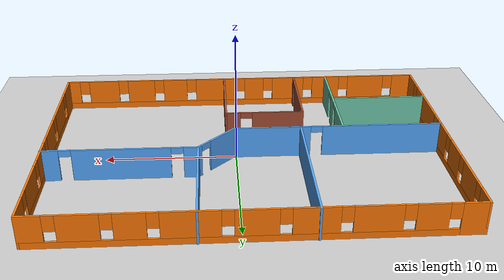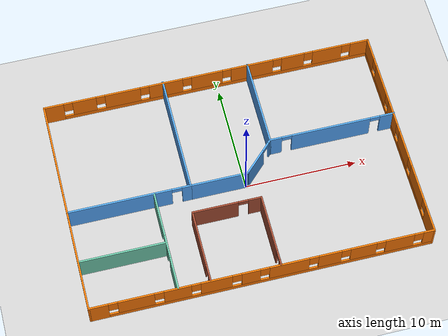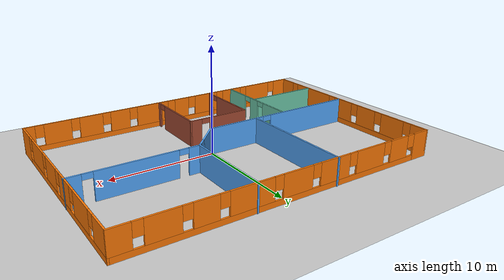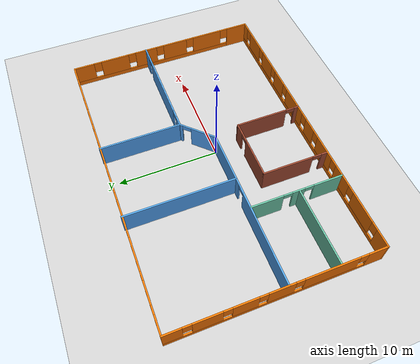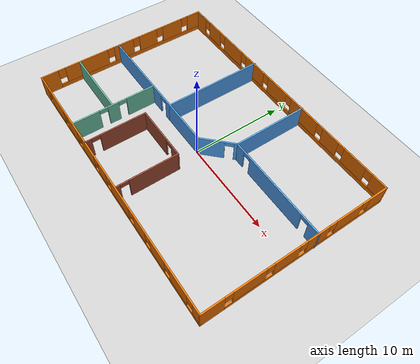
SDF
<sdf version="1.6">
 <world name="default">
  <model name="ground_plane">
   <static>1</static>
   <link name="link">
    <collision name="collision">
     <geometry><plane><normal>0 0 1</normal><size>100 100</size></plane></geometry>
     <surface>
      <contact><collide_bitmask>65535</collide_bitmask></contact>
      <friction><ode><mu>100</mu><mu2>50</mu2></ode></friction>
     </surface>
    </collision>
    <visual name="visual">
     <cast_shadows>0</cast_shadows>
     <geometry><plane><normal>0 0 1</normal><size>100 100</size></plane></geometry>
     <material>
      <script><uri>file://media/materials/scripts/gazebo.material</uri><name>Gazebo/Grey</name></script>
     </material>
    </visual>
   </link>
  </model>
  <model name="building1">
   <pose>-0.784049 0.80046 0 0 -0 0</pose>
   <link name="Wall_0">
    <pose>-0.018158 -10.0416 0 0 -0 0</pose>
    <visual name="Wall_0_Visual_0">
     <pose>-14.2164 0 1.25 0 -0 0</pose>
     <geometry><box><size>1.7173 0.15 2.5</size></box></geometry>
     <material>
      <script><uri>file://media/materials/scripts/gazebo.material</uri><name>Gazebo/Grey</name></script>
      <ambient>0.996078 0.47451 0.0196078 1</ambient>
     </material>
     <meta><layer>0</layer></meta>
    </visual>
    <collision name="Wall_0_Collision_0">
     <geometry><box><size>1.7173 0.15 2.5</size></box></geometry>
     <pose>-14.2164 0 1.25 0 -0 0</pose>
    </collision>
    <visual name="Wall_0_Visual_1">
     <pose>0.858647 0 0.25 0 -0 0</pose>
     <geometry><box><size>28.4327 0.15 0.5</size></box></geometry>
     <material>
      <script><uri>file://media/materials/scripts/gazebo.material</uri><name>Gazebo/Grey</name></script>
      <ambient>0.996078 0.47451 0.0196078 1</ambient>
     </material>
     <meta><layer>0</layer></meta>
    </visual>
    <collision name="Wall_0_Collision_1">
     <geometry><box><size>28.4327 0.15 0.5</size></box></geometry>
     <pose>0.858647 0 0.25 0 -0 0</pose>
    </collision>
    <visual name="Wall_0_Visual_2">
     <pose>-10.9877 0 1.5 0 -0 0</pose>
     <geometry><box><size>3.14002 0.15 2</size></box></geometry>
     <material>
      <script><uri>file://media/materials/scripts/gazebo.material</uri><name>Gazebo/Grey</name></script>
      <ambient>0.996078 0.47451 0.0196078 1</ambient>
     </material>
     <meta><layer>0</layer></meta>
    </visual>
    <collision name="Wall_0_Collision_2">
     <geometry><box><size>3.14002 0.15 2</size></box></geometry>
     <pose>-10.9877 0 1.5 0 -0 0</pose>
    </collision>
    <visual name="Wall_0_Visual_3">
     <pose>-7.43464 0 1.5 0 -0 0</pose>
     <geometry><box><size>2.36609 0.15 2</size></box></geometry>
     <material>
      <script><uri>file://media/materials/scripts/gazebo.material</uri><name>Gazebo/Grey</name></script>
      <ambient>0.996078 0.47451 0.0196078 1</ambient>
     </material>
     <meta><layer>0</layer></meta>
    </visual>
    <collision name="Wall_0_Collision_3">
     <geometry><box><size>2.36609 0.15 2</size></box></geometry>
     <pose>-7.43464 0 1.5 0 -0 0</pose>
    </collision>
    <visual name="Wall_0_Visual_4">
     <pose>-4.08798 0 1.5 0 -0 0</pose>
     <geometry><box><size>2.72724 0.15 2</size></box></geometry>
     <material>
      <script><uri>file://media/materials/scripts/gazebo.material</uri><name>Gazebo/Grey</name></script>
      <ambient>0.996078 0.47451 0.0196078 1</ambient>
     </material>
     <meta><layer>0</layer></meta>
    </visual>
    <collision name="Wall_0_Collision_4">
     <geometry><box><size>2.72724 0.15 2</size></box></geometry>
     <pose>-4.08798 0 1.5 0 -0 0</pose>
    </collision>
    <visual name="Wall_0_Visual_5">
     <pose>-1.11069 0 1.5 0 -0 0</pose>
     <geometry><box><size>1.62733 0.15 2</size></box></geometry>
     <material>
      <script><uri>file://media/materials/scripts/gazebo.material</uri><name>Gazebo/Grey</name></script>
      <ambient>0.996078 0.47451 0.0196078 1</ambient>
     </material>
     <meta><layer>0</layer></meta>
    </visual>
    <collision name="Wall_0_Collision_5">
     <geometry><box><size>1.62733 0.15 2</size></box></geometry>
     <pose>-1.11069 0 1.5 0 -0 0</pose>
    </collision>
    <visual name="Wall_0_Visual_6">
     <pose>2.2442 0 1.5 0 -0 0</pose>
     <geometry><box><size>3.48244 0.15 2</size></box></geometry>
     <material>
      <script><uri>file://media/materials/scripts/gazebo.material</uri><name>Gazebo/Grey</name></script>
      <ambient>0.996078 0.47451 0.0196078 1</ambient>
     </material>
     <meta><layer>0</layer></meta>
    </visual>
    <collision name="Wall_0_Collision_6">
     <geometry><box><size>3.48244 0.15 2</size></box></geometry>
     <pose>2.2442 0 1.5 0 -0 0</pose>
    </collision>
    <visual name="Wall_0_Visual_7">
     <pose>5.79258 0 1.5 0 -0 0</pose>
     <geometry><box><size>2.0143 0.15 2</size></box></geometry>
     <material>
      <script><uri>file://media/materials/scripts/gazebo.material</uri><name>Gazebo/Grey</name></script>
      <ambient>0.996078 0.47451 0.0196078 1</ambient>
     </material>
     <meta><layer>0</layer></meta>
    </visual>
    <collision name="Wall_0_Collision_7">
     <geometry><box><size>2.0143 0.15 2</size></box></geometry>
     <pose>5.79258 0 1.5 0 -0 0</pose>
    </collision>
    <visual name="Wall_0_Visual_8">
     <pose>8.74759 0 1.5 0 -0 0</pose>
     <geometry><box><size>2.29573 0.15 2</size></box></geometry>
     <material>
      <script><uri>file://media/materials/scripts/gazebo.material</uri><name>Gazebo/Grey</name></script>
      <ambient>0.996078 0.47451 0.0196078 1</ambient>
     </material>
     <meta><layer>0</layer></meta>
    </visual>
    <collision name="Wall_0_Collision_8">
     <geometry><box><size>2.29573 0.15 2</size></box></geometry>
     <pose>8.74759 0 1.5 0 -0 0</pose>
    </collision>
    <visual name="Wall_0_Visual_9">
     <pose>11.9664 0 1.5 0 -0 0</pose>
     <geometry><box><size>2.54198 0.15 2</size></box></geometry>
     <material>
      <script><uri>file://media/materials/scripts/gazebo.material</uri><name>Gazebo/Grey</name></script>
      <ambient>0.996078 0.47451 0.0196078 1</ambient>
     </material>
     <meta><layer>0</layer></meta>
    </visual>
    <collision name="Wall_0_Collision_9">
     <geometry><box><size>2.54198 0.15 2</size></box></geometry>
     <pose>11.9664 0 1.5 0 -0 0</pose>
    </collision>
    <visual name="Wall_0_Visual_10">
     <pose>14.5562 0 1.5 0 -0 0</pose>
     <geometry><box><size>1.03756 0.15 2</size></box></geometry>
     <material>
      <script><uri>file://media/materials/scripts/gazebo.material</uri><name>Gazebo/Grey</name></script>
      <ambient>0.996078 0.47451 0.0196078 1</ambient>
     </material>
     <meta><layer>0</layer></meta>
    </visual>
    <collision name="Wall_0_Collision_10">
     <geometry><box><size>1.03756 0.15 2</size></box></geometry>
     <pose>14.5562 0 1.5 0 -0 0</pose>
    </collision>
    <visual name="Wall_0_Visual_11">
     <pose>-12.9577 0 1.9 0 -0 0</pose>
     <geometry><box><size>0.8 0.15 1.2</size></box></geometry>
     <material>
      <script><uri>file://media/materials/scripts/gazebo.material</uri><name>Gazebo/Grey</name></script>
      <ambient>0.996078 0.47451 0.0196078 1</ambient>
     </material>
     <meta><layer>0</layer></meta>
    </visual>
    <collision name="Wall_0_Collision_11">
     <geometry><box><size>0.8 0.15 1.2</size></box></geometry>
     <pose>-12.9577 0 1.9 0 -0 0</pose>
    </collision>
    <visual name="Wall_0_Visual_12">
     <pose>-9.01768 0 1.9 0 -0 0</pose>
     <geometry><box><size>0.8 0.15 1.2</size></box></geometry>
     <material>
      <script><uri>file://media/materials/scripts/gazebo.material</uri><name>Gazebo/Grey</name></script>
      <ambient>0.996078 0.47451 0.0196078 1</ambient>
     </material>
     <meta><layer>0</layer></meta>
    </visual>
    <collision name="Wall_0_Collision_12">
     <geometry><box><size>0.8 0.15 1.2</size></box></geometry>
     <pose>-9.01768 0 1.9 0 -0 0</pose>
    </collision>
    <visual name="Wall_0_Visual_13">
     <pose>-5.8516 0 1.9 0 -0 0</pose>
     <geometry><box><size>0.8 0.15 1.2</size></box></geometry>
     <material>
      <script><uri>file://media/materials/scripts/gazebo.material</uri><name>Gazebo/Grey</name></script>
      <ambient>0.996078 0.47451 0.0196078 1</ambient>
     </material>
     <meta><layer>0</layer></meta>
    </visual>
    <collision name="Wall_0_Collision_13">
     <geometry><box><size>0.8 0.15 1.2</size></box></geometry>
     <pose>-5.8516 0 1.9 0 -0 0</pose>
    </collision>
    <visual name="Wall_0_Visual_14">
     <pose>-2.32436 0 1.9 0 -0 0</pose>
     <geometry><box><size>0.8 0.15 1.2</size></box></geometry>
     <material>
      <script><uri>file://media/materials/scripts/gazebo.material</uri><name>Gazebo/Grey</name></script>
      <ambient>0.996078 0.47451 0.0196078 1</ambient>
     </material>
     <meta><layer>0</layer></meta>
    </visual>
    <collision name="Wall_0_Collision_14">
     <geometry><box><size>0.8 0.15 1.2</size></box></geometry>
     <pose>-2.32436 0 1.9 0 -0 0</pose>
    </collision>
    <visual name="Wall_0_Visual_15">
     <pose>0.10298 0 1.9 0 -0 0</pose>
     <geometry><box><size>0.8 0.15 1.2</size></box></geometry>
     <material>
      <script><uri>file://media/materials/scripts/gazebo.material</uri><name>Gazebo/Grey</name></script>
      <ambient>0.996078 0.47451 0.0196078 1</ambient>
     </material>
     <meta><layer>0</layer></meta>
    </visual>
    <collision name="Wall_0_Collision_15">
     <geometry><box><size>0.8 0.15 1.2</size></box></geometry>
     <pose>0.10298 0 1.9 0 -0 0</pose>
    </collision>
    <visual name="Wall_0_Visual_16">
     <pose>4.38542 0 1.9 0 -0 0</pose>
     <geometry><box><size>0.8 0.15 1.2</size></box></geometry>
     <material>
      <script><uri>file://media/materials/scripts/gazebo.material</uri><name>Gazebo/Grey</name></script>
      <ambient>0.996078 0.47451 0.0196078 1</ambient>
     </material>
     <meta><layer>0</layer></meta>
    </visual>
    <collision name="Wall_0_Collision_16">
     <geometry><box><size>0.8 0.15 1.2</size></box></geometry>
     <pose>4.38542 0 1.9 0 -0 0</pose>
    </collision>
    <visual name="Wall_0_Visual_17">
     <pose>7.19973 0 1.9 0 -0 0</pose>
     <geometry><box><size>0.8 0.15 1.2</size></box></geometry>
     <material>
      <script><uri>file://media/materials/scripts/gazebo.material</uri><name>Gazebo/Grey</name></script>
      <ambient>0.996078 0.47451 0.0196078 1</ambient>
     </material>
     <meta><layer>0</layer></meta>
    </visual>
    <collision name="Wall_0_Collision_17">
     <geometry><box><size>0.8 0.15 1.2</size></box></geometry>
     <pose>7.19973 0 1.9 0 -0 0</pose>
    </collision>
    <visual name="Wall_0_Visual_18">
     <pose>10.2955 0 1.9 0 -0 0</pose>
     <geometry><box><size>0.8 0.15 1.2</size></box></geometry>
     <material>
      <script><uri>file://media/materials/scripts/gazebo.material</uri><name>Gazebo/Grey</name></script>
      <ambient>0.996078 0.47451 0.0196078 1</ambient>
     </material>
     <meta><layer>0</layer></meta>
    </visual>
    <collision name="Wall_0_Collision_18">
     <geometry><box><size>0.8 0.15 1.2</size></box></geometry>
     <pose>10.2955 0 1.9 0 -0 0</pose>
    </collision>
    <visual name="Wall_0_Visual_19">
     <pose>13.6374 0 1.9 0 -0 0</pose>
     <geometry><box><size>0.8 0.15 1.2</size></box></geometry>
     <material>
      <script><uri>file://media/materials/scripts/gazebo.material</uri><name>Gazebo/Grey</name></script>
      <ambient>0.996078 0.47451 0.0196078 1</ambient>
     </material>
     <meta><layer>0</layer></meta>
    </visual>
    <collision name="Wall_0_Collision_19">
     <geometry><box><size>0.8 0.15 1.2</size></box></geometry>
     <pose>13.6374 0 1.9 0 -0 0</pose>
    </collision>
   </link>
   <link name="Wall_11">
    <pose>-7.3948 -5.44058 0 0 0 -1.5708</pose>
    <visual name="Wall_11_Visual_0">
     <pose>-3.01002 0 1.25 0 -0 0</pose>
     <geometry><box><size>3.22995 0.15 2.5</size></box></geometry>
     <material>
      <script><uri>file://media/materials/scripts/gazebo.material</uri><name>Gazebo/Grey</name></script>
      <ambient>0.435294 0.796078 0.67451 1</ambient>
     </material>
     <meta><layer>0</layer></meta>
    </visual>
    <collision name="Wall_11_Collision_0">
     <geometry><box><size>3.22995 0.15 2.5</size></box></geometry>
     <pose>-3.01002 0 1.25 0 -0 0</pose>
    </collision>
    <visual name="Wall_11_Visual_1">
     <pose>0.127027 0 1.25 0 -0 0</pose>
     <geometry><box><size>1.24415 0.15 2.5</size></box></geometry>
     <material>
      <script><uri>file://media/materials/scripts/gazebo.material</uri><name>Gazebo/Grey</name></script>
      <ambient>0.435294 0.796078 0.67451 1</ambient>
     </material>
     <meta><layer>0</layer></meta>
    </visual>
    <collision name="Wall_11_Collision_1">
     <geometry><box><size>1.24415 0.15 2.5</size></box></geometry>
     <pose>0.127027 0 1.25 0 -0 0</pose>
    </collision>
    <visual name="Wall_11_Visual_2">
     <pose>3.13705 0 1.25 0 -0 0</pose>
     <geometry><box><size>2.9759 0.15 2.5</size></box></geometry>
     <material>
      <script><uri>file://media/materials/scripts/gazebo.material</uri><name>Gazebo/Grey</name></script>
      <ambient>0.435294 0.796078 0.67451 1</ambient>
     </material>
     <meta><layer>0</layer></meta>
    </visual>
    <collision name="Wall_11_Collision_2">
     <geometry><box><size>2.9759 0.15 2.5</size></box></geometry>
     <pose>3.13705 0 1.25 0 -0 0</pose>
    </collision>
    <visual name="Wall_11_Visual_3">
     <pose>-0.945045 0 2.25 0 -0 0</pose>
     <geometry><box><size>0.9 0.15 0.5</size></box></geometry>
     <material>
      <script><uri>file://media/materials/scripts/gazebo.material</uri><name>Gazebo/Grey</name></script>
      <ambient>0.435294 0.796078 0.67451 1</ambient>
     </material>
     <meta><layer>0</layer></meta>
    </visual>
    <collision name="Wall_11_Collision_3">
     <geometry><box><size>0.9 0.15 0.5</size></box></geometry>
     <pose>-0.945045 0 2.25 0 -0 0</pose>
    </collision>
    <visual name="Wall_11_Visual_4">
     <pose>1.1991 0 2.25 0 -0 0</pose>
     <geometry><box><size>0.9 0.15 0.5</size></box></geometry>
     <material>
      <script><uri>file://media/materials/scripts/gazebo.material</uri><name>Gazebo/Grey</name></script>
      <ambient>0.435294 0.796078 0.67451 1</ambient>
     </material>
     <meta><layer>0</layer></meta>
    </visual>
    <collision name="Wall_11_Collision_4">
     <geometry><box><size>0.9 0.15 0.5</size></box></geometry>
     <pose>1.1991 0 2.25 0 -0 0</pose>
    </collision>
   </link>
   <link name="Wall_13">
    <collision name="Wall_13_Collision">
     <geometry><box><size>5.25 0.15 2.5</size></box></geometry>
     <pose>0 0 1.25 0 -0 0</pose>
    </collision>
    <visual name="Wall_13_Visual">
     <pose>0 0 1.25 0 -0 0</pose>
     <geometry><box><size>5.25 0.15 2.5</size></box></geometry>
     <material>
      <script><uri>file://media/materials/scripts/gazebo.material</uri><name>Gazebo/Grey</name></script>
      <ambient>0.333333 0.666667 1 1</ambient>
     </material>
     <meta><layer>0</layer></meta>
    </visual>
    <pose>-1.6042 -0.808364 0 0 -0 0</pose>
   </link>
   <link name="Wall_14">
    <pose>2.30698 0.552817 0 0 -0 0.785398</pose>
    <visual name="Wall_14_Visual_0">
     <pose>-0.648809 0 1.25 0 -0 0</pose>
     <geometry><box><size>2.70238 0.15 2.5</size></box></geometry>
     <material>
      <script><uri>file://media/materials/scripts/gazebo.material</uri><name>Gazebo/Grey</name></script>
      <ambient>0.333333 0.666667 1 1</ambient>
     </material>
     <meta><layer>0</layer></meta>
    </visual>
    <collision name="Wall_14_Collision_0">
     <geometry><box><size>2.70238 0.15 2.5</size></box></geometry>
     <pose>-0.648809 0 1.25 0 -0 0</pose>
    </collision>
    <visual name="Wall_14_Visual_1">
     <pose>1.80119 0 1.25 0 -0 0</pose>
     <geometry><box><size>0.397618 0.15 2.5</size></box></geometry>
     <material>
      <script><uri>file://media/materials/scripts/gazebo.material</uri><name>Gazebo/Grey</name></script>
      <ambient>0.333333 0.666667 1 1</ambient>
     </material>
     <meta><layer>0</layer></meta>
    </visual>
    <collision name="Wall_14_Collision_1">
     <geometry><box><size>0.397618 0.15 2.5</size></box></geometry>
     <pose>1.80119 0 1.25 0 -0 0</pose>
    </collision>
    <visual name="Wall_14_Visual_2">
     <pose>1.15238 0 2.25 0 -0 0</pose>
     <geometry><box><size>0.9 0.15 0.5</size></box></geometry>
     <material>
      <script><uri>file://media/materials/scripts/gazebo.material</uri><name>Gazebo/Grey</name></script>
      <ambient>0.333333 0.666667 1 1</ambient>
     </material>
     <meta><layer>0</layer></meta>
    </visual>
    <collision name="Wall_14_Collision_2">
     <geometry><box><size>0.9 0.15 0.5</size></box></geometry>
     <pose>1.15238 0 2.25 0 -0 0</pose>
    </collision>
   </link>
   <link name="Wall_15">
    <collision name="Wall_15_Collision">
     <geometry><box><size>8.25 0.15 2.5</size></box></geometry>
     <pose>0 0 1.25 0 -0 0</pose>
    </collision>
    <visual name="Wall_15_Visual">
     <pose>0 0 1.25 0 -0 0</pose>
     <geometry><box><size>8.25 0.15 2.5</size></box></geometry>
     <material>
      <script><uri>file://media/materials/scripts/gazebo.material</uri><name>Gazebo/Grey</name></script>
      <ambient>0.333333 0.666667 1 1</ambient>
     </material>
     <meta><layer>0</layer></meta>
    </visual>
    <pose>3.66816 5.964 0 0 -0 1.5708</pose>
   </link>
   <link name="Wall_17">
    <pose>9.34316 1.914 0 0 -0 0</pose>
    <visual name="Wall_17_Visual_0">
     <pose>-5.18047 0 1.25 0 -0 0</pose>
     <geometry><box><size>1.13906 0.15 2.5</size></box></geometry>
     <material>
      <script><uri>file://media/materials/scripts/gazebo.material</uri><name>Gazebo/Grey</name></script>
      <ambient>0.333333 0.666667 1 1</ambient>
     </material>
     <meta><layer>0</layer></meta>
    </visual>
    <collision name="Wall_17_Collision_0">
     <geometry><box><size>1.13906 0.15 2.5</size></box></geometry>
     <pose>-5.18047 0 1.25 0 -0 0</pose>
    </collision>
    <visual name="Wall_17_Visual_1">
     <pose>-0.115377 0 1.25 0 -0 0</pose>
     <geometry><box><size>7.19111 0.15 2.5</size></box></geometry>
     <material>
      <script><uri>file://media/materials/scripts/gazebo.material</uri><name>Gazebo/Grey</name></script>
      <ambient>0.333333 0.666667 1 1</ambient>
     </material>
     <meta><layer>0</layer></meta>
    </visual>
    <collision name="Wall_17_Collision_1">
     <geometry><box><size>7.19111 0.15 2.5</size></box></geometry>
     <pose>-0.115377 0 1.25 0 -0 0</pose>
    </collision>
    <visual name="Wall_17_Visual_2">
     <pose>5.06509 0 1.25 0 -0 0</pose>
     <geometry><box><size>1.36982 0.15 2.5</size></box></geometry>
     <material>
      <script><uri>file://media/materials/scripts/gazebo.material</uri><name>Gazebo/Grey</name></script>
      <ambient>0.333333 0.666667 1 1</ambient>
     </material>
     <meta><layer>0</layer></meta>
    </visual>
    <collision name="Wall_17_Collision_2">
     <geometry><box><size>1.36982 0.15 2.5</size></box></geometry>
     <pose>5.06509 0 1.25 0 -0 0</pose>
    </collision>
    <visual name="Wall_17_Visual_3">
     <pose>-4.16094 0 2.25 0 -0 0</pose>
     <geometry><box><size>0.9 0.15 0.5</size></box></geometry>
     <material>
      <script><uri>file://media/materials/scripts/gazebo.material</uri><name>Gazebo/Grey</name></script>
      <ambient>0.333333 0.666667 1 1</ambient>
     </material>
     <meta><layer>0</layer></meta>
    </visual>
    <collision name="Wall_17_Collision_3">
     <geometry><box><size>0.9 0.15 0.5</size></box></geometry>
     <pose>-4.16094 0 2.25 0 -0 0</pose>
    </collision>
    <visual name="Wall_17_Visual_4">
     <pose>3.93018 0 2.25 0 -0 0</pose>
     <geometry><box><size>0.9 0.15 0.5</size></box></geometry>
     <material>
      <script><uri>file://media/materials/scripts/gazebo.material</uri><name>Gazebo/Grey</name></script>
      <ambient>0.333333 0.666667 1 1</ambient>
     </material>
     <meta><layer>0</layer></meta>
    </visual>
    <collision name="Wall_17_Collision_4">
     <geometry><box><size>0.9 0.15 0.5</size></box></geometry>
     <pose>3.93018 0 2.25 0 -0 0</pose>
    </collision>
   </link>
   <link name="Wall_19">
    <collision name="Wall_19_Collision">
     <geometry><box><size>7.5 0.15 2.5</size></box></geometry>
     <pose>0 0 1.25 0 -0 0</pose>
    </collision>
    <visual name="Wall_19_Visual">
     <pose>0 0 1.25 0 -0 0</pose>
     <geometry><box><size>7.5 0.15 2.5</size></box></geometry>
     <material>
      <script><uri>file://media/materials/scripts/gazebo.material</uri><name>Gazebo/Grey</name></script>
      <ambient>0.435294 0.796078 0.67451 1</ambient>
     </material>
     <meta><layer>0</layer></meta>
    </visual>
    <pose>-11.1958 -5.62829 0 0 -0 3.14159</pose>
   </link>
   <link name="Wall_2">
    <pose>-15.0182 -0.041636 0 0 -0 1.5708</pose>
    <visual name="Wall_2_Visual_0">
     <pose>-9.11261 0 1.25 0 -0 0</pose>
     <geometry><box><size>1.92478 0.15 2.5</size></box></geometry>
     <material>
      <script><uri>file://media/materials/scripts/gazebo.material</uri><name>Gazebo/Grey</name></script>
      <ambient>0.996078 0.47451 0.0196078 1</ambient>
     </material>
     <meta><layer>0</layer></meta>
    </visual>
    <collision name="Wall_2_Collision_0">
     <geometry><box><size>1.92478 0.15 2.5</size></box></geometry>
     <pose>-9.11261 0 1.25 0 -0 0</pose>
    </collision>
    <visual name="Wall_2_Visual_1">
     <pose>0.962392 0 0.25 0 -0 0</pose>
     <geometry><box><size>18.2252 0.15 0.5</size></box></geometry>
     <material>
      <script><uri>file://media/materials/scripts/gazebo.material</uri><name>Gazebo/Grey</name></script>
      <ambient>0.996078 0.47451 0.0196078 1</ambient>
     </material>
     <meta><layer>0</layer></meta>
    </visual>
    <collision name="Wall_2_Collision_1">
     <geometry><box><size>18.2252 0.15 0.5</size></box></geometry>
     <pose>0.962392 0 0.25 0 -0 0</pose>
    </collision>
    <visual name="Wall_2_Visual_2">
     <pose>-4.77761 0 1.5 0 -0 0</pose>
     <geometry><box><size>5.14521 0.15 2</size></box></geometry>
     <material>
      <script><uri>file://media/materials/scripts/gazebo.material</uri><name>Gazebo/Grey</name></script>
      <ambient>0.996078 0.47451 0.0196078 1</ambient>
     </material>
     <meta><layer>0</layer></meta>
    </visual>
    <collision name="Wall_2_Collision_2">
     <geometry><box><size>5.14521 0.15 2</size></box></geometry>
     <pose>-4.77761 0 1.5 0 -0 0</pose>
    </collision>
    <visual name="Wall_2_Visual_3">
     <pose>-0.186783 0 1.5 0 -0 0</pose>
     <geometry><box><size>2.43645 0.15 2</size></box></geometry>
     <material>
      <script><uri>file://media/materials/scripts/gazebo.material</uri><name>Gazebo/Grey</name></script>
      <ambient>0.996078 0.47451 0.0196078 1</ambient>
     </material>
     <meta><layer>0</layer></meta>
    </visual>
    <collision name="Wall_2_Collision_3">
     <geometry><box><size>2.43645 0.15 2</size></box></geometry>
     <pose>-0.186783 0 1.5 0 -0 0</pose>
    </collision>
    <visual name="Wall_2_Visual_4">
     <pose>2.97931 0 1.5 0 -0 0</pose>
     <geometry><box><size>2.29573 0.15 2</size></box></geometry>
     <material>
      <script><uri>file://media/materials/scripts/gazebo.material</uri><name>Gazebo/Grey</name></script>
      <ambient>0.996078 0.47451 0.0196078 1</ambient>
     </material>
     <meta><layer>0</layer></meta>
    </visual>
    <collision name="Wall_2_Collision_4">
     <geometry><box><size>2.29573 0.15 2</size></box></geometry>
     <pose>2.97931 0 1.5 0 -0 0</pose>
    </collision>
    <visual name="Wall_2_Visual_5">
     <pose>6.23334 0 1.5 0 -0 0</pose>
     <geometry><box><size>2.61234 0.15 2</size></box></geometry>
     <material>
      <script><uri>file://media/materials/scripts/gazebo.material</uri><name>Gazebo/Grey</name></script>
      <ambient>0.996078 0.47451 0.0196078 1</ambient>
     </material>
     <meta><layer>0</layer></meta>
    </visual>
    <collision name="Wall_2_Collision_5">
     <geometry><box><size>2.61234 0.15 2</size></box></geometry>
     <pose>6.23334 0 1.5 0 -0 0</pose>
    </collision>
    <visual name="Wall_2_Visual_6">
     <pose>9.20726 0 1.5 0 -0 0</pose>
     <geometry><box><size>1.73549 0.15 2</size></box></geometry>
     <material>
      <script><uri>file://media/materials/scripts/gazebo.material</uri><name>Gazebo/Grey</name></script>
      <ambient>0.996078 0.47451 0.0196078 1</ambient>
     </material>
     <meta><layer>0</layer></meta>
    </visual>
    <collision name="Wall_2_Collision_6">
     <geometry><box><size>1.73549 0.15 2</size></box></geometry>
     <pose>9.20726 0 1.5 0 -0 0</pose>
    </collision>
    <visual name="Wall_2_Visual_7">
     <pose>-7.75022 0 1.9 0 -0 0</pose>
     <geometry><box><size>0.8 0.15 1.2</size></box></geometry>
     <material>
      <script><uri>file://media/materials/scripts/gazebo.material</uri><name>Gazebo/Grey</name></script>
      <ambient>0.996078 0.47451 0.0196078 1</ambient>
     </material>
     <meta><layer>0</layer></meta>
    </visual>
    <collision name="Wall_2_Collision_7">
     <geometry><box><size>0.8 0.15 1.2</size></box></geometry>
     <pose>-7.75022 0 1.9 0 -0 0</pose>
    </collision>
    <visual name="Wall_2_Visual_8">
     <pose>-1.80501 0 1.9 0 -0 0</pose>
     <geometry><box><size>0.8 0.15 1.2</size></box></geometry>
     <material>
      <script><uri>file://media/materials/scripts/gazebo.material</uri><name>Gazebo/Grey</name></script>
      <ambient>0.996078 0.47451 0.0196078 1</ambient>
     </material>
     <meta><layer>0</layer></meta>
    </visual>
    <collision name="Wall_2_Collision_8">
     <geometry><box><size>0.8 0.15 1.2</size></box></geometry>
     <pose>-1.80501 0 1.9 0 -0 0</pose>
    </collision>
    <visual name="Wall_2_Visual_9">
     <pose>1.43144 0 1.9 0 -0 0</pose>
     <geometry><box><size>0.8 0.15 1.2</size></box></geometry>
     <material>
      <script><uri>file://media/materials/scripts/gazebo.material</uri><name>Gazebo/Grey</name></script>
      <ambient>0.996078 0.47451 0.0196078 1</ambient>
     </material>
     <meta><layer>0</layer></meta>
    </visual>
    <collision name="Wall_2_Collision_9">
     <geometry><box><size>0.8 0.15 1.2</size></box></geometry>
     <pose>1.43144 0 1.9 0 -0 0</pose>
    </collision>
    <visual name="Wall_2_Visual_10">
     <pose>4.52717 0 1.9 0 -0 0</pose>
     <geometry><box><size>0.8 0.15 1.2</size></box></geometry>
     <material>
      <script><uri>file://media/materials/scripts/gazebo.material</uri><name>Gazebo/Grey</name></script>
      <ambient>0.996078 0.47451 0.0196078 1</ambient>
     </material>
     <meta><layer>0</layer></meta>
    </visual>
    <collision name="Wall_2_Collision_10">
     <geometry><box><size>0.8 0.15 1.2</size></box></geometry>
     <pose>4.52717 0 1.9 0 -0 0</pose>
    </collision>
    <visual name="Wall_2_Visual_11">
     <pose>7.93951 0 1.9 0 -0 0</pose>
     <geometry><box><size>0.8 0.15 1.2</size></box></geometry>
     <material>
      <script><uri>file://media/materials/scripts/gazebo.material</uri><name>Gazebo/Grey</name></script>
      <ambient>0.996078 0.47451 0.0196078 1</ambient>
     </material>
     <meta><layer>0</layer></meta>
    </visual>
    <collision name="Wall_2_Collision_11">
     <geometry><box><size>0.8 0.15 1.2</size></box></geometry>
     <pose>7.93951 0 1.9 0 -0 0</pose>
    </collision>
   </link>
   <link name="Wall_23">
    <pose>-4.60803 -6.6975 0 0 -0 1.5708</pose>
    <visual name="Wall_23_Visual_0">
     <pose>-3.01635 0 1.25 0 -0 0</pose>
     <geometry><box><size>0.717301 0.15 2.5</size></box></geometry>
     <material>
      <script><uri>file://media/materials/scripts/gazebo.material</uri><name>Gazebo/Bricks</name></script>
      <ambient>0.435294 0.796078 0.67451 1</ambient>
     </material>
     <meta><layer>0</layer></meta>
    </visual>
    <collision name="Wall_23_Collision_0">
     <geometry><box><size>0.717301 0.15 2.5</size></box></geometry>
     <pose>-3.01635 0 1.25 0 -0 0</pose>
    </collision>
    <visual name="Wall_23_Visual_1">
     <pose>0.80865 0 1.25 0 -0 0</pose>
     <geometry><box><size>5.1327 0.15 2.5</size></box></geometry>
     <material>
      <script><uri>file://media/materials/scripts/gazebo.material</uri><name>Gazebo/Bricks</name></script>
      <ambient>0.435294 0.796078 0.67451 1</ambient>
     </material>
     <meta><layer>0</layer></meta>
    </visual>
    <collision name="Wall_23_Collision_1">
     <geometry><box><size>5.1327 0.15 2.5</size></box></geometry>
     <pose>0.80865 0 1.25 0 -0 0</pose>
    </collision>
    <visual name="Wall_23_Visual_2">
     <pose>-2.2077 0 2.25 0 -0 0</pose>
     <geometry><box><size>0.9 0.15 0.5</size></box></geometry>
     <material>
      <script><uri>file://media/materials/scripts/gazebo.material</uri><name>Gazebo/Bricks</name></script>
      <ambient>0.435294 0.796078 0.67451 1</ambient>
     </material>
     <meta><layer>0</layer></meta>
    </visual>
    <collision name="Wall_23_Collision_2">
     <geometry><box><size>0.9 0.15 0.5</size></box></geometry>
     <pose>-2.2077 0 2.25 0 -0 0</pose>
    </collision>
   </link>
   <link name="Wall_24">
    <pose>-1.55802 -3.3975 0 0 -0 0</pose>
    <visual name="Wall_24_Visual_0">
     <pose>-1.06722 0 1.25 0 -0 0</pose>
     <geometry><box><size>4.11557 0.15 2.5</size></box></geometry>
     <material>
      <script><uri>file://media/materials/scripts/gazebo.material</uri><name>Gazebo/Bricks</name></script>
      <ambient>0.435294 0.796078 0.67451 1</ambient>
     </material>
     <meta><layer>0</layer></meta>
    </visual>
    <collision name="Wall_24_Collision_0">
     <geometry><box><size>4.11557 0.15 2.5</size></box></geometry>
     <pose>-1.06722 0 1.25 0 -0 0</pose>
    </collision>
    <visual name="Wall_24_Visual_1">
     <pose>2.50779 0 1.25 0 -0 0</pose>
     <geometry><box><size>1.23443 0.15 2.5</size></box></geometry>
     <material>
      <script><uri>file://media/materials/scripts/gazebo.material</uri><name>Gazebo/Bricks</name></script>
      <ambient>0.435294 0.796078 0.67451 1</ambient>
     </material>
     <meta><layer>0</layer></meta>
    </visual>
    <collision name="Wall_24_Collision_1">
     <geometry><box><size>1.23443 0.15 2.5</size></box></geometry>
     <pose>2.50779 0 1.25 0 -0 0</pose>
    </collision>
    <visual name="Wall_24_Visual_2">
     <pose>1.44057 0 2.25 0 -0 0</pose>
     <geometry><box><size>0.9 0.15 0.5</size></box></geometry>
     <material>
      <script><uri>file://media/materials/scripts/gazebo.material</uri><name>Gazebo/Bricks</name></script>
      <ambient>0.435294 0.796078 0.67451 1</ambient>
     </material>
     <meta><layer>0</layer></meta>
    </visual>
    <collision name="Wall_24_Collision_2">
     <geometry><box><size>0.9 0.15 0.5</size></box></geometry>
     <pose>1.44057 0 2.25 0 -0 0</pose>
    </collision>
   </link>
   <link name="Wall_25">
    <pose>1.49197 -6.6975 0 0 0 -1.5708</pose>
    <visual name="Wall_25_Visual_0">
     <pose>-0.707511 0 1.25 0 -0 0</pose>
     <geometry><box><size>5.33498 0.15 2.5</size></box></geometry>
     <material>
      <script><uri>file://media/materials/scripts/gazebo.material</uri><name>Gazebo/Bricks</name></script>
      <ambient>0.435294 0.796078 0.67451 1</ambient>
     </material>
     <meta><layer>0</layer></meta>
    </visual>
    <collision name="Wall_25_Collision_0">
     <geometry><box><size>5.33498 0.15 2.5</size></box></geometry>
     <pose>-0.707511 0 1.25 0 -0 0</pose>
    </collision>
    <visual name="Wall_25_Visual_1">
     <pose>3.11749 0 1.25 0 -0 0</pose>
     <geometry><box><size>0.515023 0.15 2.5</size></box></geometry>
     <material>
      <script><uri>file://media/materials/scripts/gazebo.material</uri><name>Gazebo/Bricks</name></script>
      <ambient>0.435294 0.796078 0.67451 1</ambient>
     </material>
     <meta><layer>0</layer></meta>
    </visual>
    <collision name="Wall_25_Collision_1">
     <geometry><box><size>0.515023 0.15 2.5</size></box></geometry>
     <pose>3.11749 0 1.25 0 -0 0</pose>
    </collision>
    <visual name="Wall_25_Visual_2">
     <pose>2.40998 0 2.25 0 -0 0</pose>
     <geometry><box><size>0.9 0.15 0.5</size></box></geometry>
     <material>
      <script><uri>file://media/materials/scripts/gazebo.material</uri><name>Gazebo/Bricks</name></script>
      <ambient>0.435294 0.796078 0.67451 1</ambient>
     </material>
     <meta><layer>0</layer></meta>
    </visual>
    <collision name="Wall_25_Collision_2">
     <geometry><box><size>0.9 0.15 0.5</size></box></geometry>
     <pose>2.40998 0 2.25 0 -0 0</pose>
    </collision>
   </link>
   <link name="Wall_4">
    <pose>-0.018158 9.95836 0 0 -0 0</pose>
    <visual name="Wall_4_Visual_0">
     <pose>-14.1636 0 1.25 0 -0 0</pose>
     <geometry><box><size>1.82283 0.15 2.5</size></box></geometry>
     <material>
      <script><uri>file://media/materials/scripts/gazebo.material</uri><name>Gazebo/Grey</name></script>
      <ambient>0.996078 0.47451 0.0196078 1</ambient>
     </material>
     <meta><layer>0</layer></meta>
    </visual>
    <collision name="Wall_4_Collision_0">
     <geometry><box><size>1.82283 0.15 2.5</size></box></geometry>
     <pose>-14.1636 0 1.25 0 -0 0</pose>
    </collision>
    <visual name="Wall_4_Visual_1">
     <pose>0.911415 0 0.25 0 -0 0</pose>
     <geometry><box><size>28.3272 0.15 0.5</size></box></geometry>
     <material>
      <script><uri>file://media/materials/scripts/gazebo.material</uri><name>Gazebo/Grey</name></script>
      <ambient>0.996078 0.47451 0.0196078 1</ambient>
     </material>
     <meta><layer>0</layer></meta>
    </visual>
    <collision name="Wall_4_Collision_1">
     <geometry><box><size>28.3272 0.15 0.5</size></box></geometry>
     <pose>0.911415 0 0.25 0 -0 0</pose>
    </collision>
    <visual name="Wall_4_Visual_2">
     <pose>-11.3747 0 1.5 0 -0 0</pose>
     <geometry><box><size>2.15502 0.15 2</size></box></geometry>
     <material>
      <script><uri>file://media/materials/scripts/gazebo.material</uri><name>Gazebo/Grey</name></script>
      <ambient>0.996078 0.47451 0.0196078 1</ambient>
     </material>
     <meta><layer>0</layer></meta>
    </visual>
    <collision name="Wall_4_Collision_2">
     <geometry><box><size>2.15502 0.15 2</size></box></geometry>
     <pose>-11.3747 0 1.5 0 -0 0</pose>
    </collision>
    <visual name="Wall_4_Visual_3">
     <pose>-7.87437 0 1.5 0 -0 0</pose>
     <geometry><box><size>3.24556 0.15 2</size></box></geometry>
     <material>
      <script><uri>file://media/materials/scripts/gazebo.material</uri><name>Gazebo/Grey</name></script>
      <ambient>0.996078 0.47451 0.0196078 1</ambient>
     </material>
     <meta><layer>0</layer></meta>
    </visual>
    <collision name="Wall_4_Collision_3">
     <geometry><box><size>3.24556 0.15 2</size></box></geometry>
     <pose>-7.87437 0 1.5 0 -0 0</pose>
    </collision>
    <visual name="Wall_4_Visual_4">
     <pose>-3.89917 0 1.5 0 -0 0</pose>
     <geometry><box><size>3.10484 0.15 2</size></box></geometry>
     <material>
      <script><uri>file://media/materials/scripts/gazebo.material</uri><name>Gazebo/Grey</name></script>
      <ambient>0.996078 0.47451 0.0196078 1</ambient>
     </material>
     <meta><layer>0</layer></meta>
    </visual>
    <collision name="Wall_4_Collision_4">
     <geometry><box><size>3.10484 0.15 2</size></box></geometry>
     <pose>-3.89917 0 1.5 0 -0 0</pose>
    </collision>
    <visual name="Wall_4_Visual_5">
     <pose>-0.099868 0 1.5 0 -0 0</pose>
     <geometry><box><size>2.89377 0.15 2</size></box></geometry>
     <material>
      <script><uri>file://media/materials/scripts/gazebo.material</uri><name>Gazebo/Grey</name></script>
      <ambient>0.996078 0.47451 0.0196078 1</ambient>
     </material>
     <meta><layer>0</layer></meta>
    </visual>
    <collision name="Wall_4_Collision_5">
     <geometry><box><size>2.89377 0.15 2</size></box></geometry>
     <pose>-0.099868 0 1.5 0 -0 0</pose>
    </collision>
    <visual name="Wall_4_Visual_6">
     <pose>4.10399 0 1.5 0 -0 0</pose>
     <geometry><box><size>3.91395 0.15 2</size></box></geometry>
     <material>
      <script><uri>file://media/materials/scripts/gazebo.material</uri><name>Gazebo/Grey</name></script>
      <ambient>0.996078 0.47451 0.0196078 1</ambient>
     </material>
     <meta><layer>0</layer></meta>
    </visual>
    <collision name="Wall_4_Collision_6">
     <geometry><box><size>3.91395 0.15 2</size></box></geometry>
     <pose>4.10399 0 1.5 0 -0 0</pose>
    </collision>
    <visual name="Wall_4_Visual_7">
     <pose>7.92089 0 1.5 0 -0 0</pose>
     <geometry><box><size>2.11984 0.15 2</size></box></geometry>
     <material>
      <script><uri>file://media/materials/scripts/gazebo.material</uri><name>Gazebo/Grey</name></script>
      <ambient>0.996078 0.47451 0.0196078 1</ambient>
     </material>
     <meta><layer>0</layer></meta>
    </visual>
    <collision name="Wall_4_Collision_7">
     <geometry><box><size>2.11984 0.15 2</size></box></geometry>
     <pose>7.92089 0 1.5 0 -0 0</pose>
    </collision>
    <visual name="Wall_4_Visual_8">
     <pose>11.1573 0 1.5 0 -0 0</pose>
     <geometry><box><size>2.75305 0.15 2</size></box></geometry>
     <material>
      <script><uri>file://media/materials/scripts/gazebo.material</uri><name>Gazebo/Grey</name></script>
      <ambient>0.996078 0.47451 0.0196078 1</ambient>
     </material>
     <meta><layer>0</layer></meta>
    </visual>
    <collision name="Wall_4_Collision_8">
     <geometry><box><size>2.75305 0.15 2</size></box></geometry>
     <pose>11.1573 0 1.5 0 -0 0</pose>
    </collision>
    <visual name="Wall_4_Visual_9">
     <pose>14.2044 0 1.5 0 -0 0</pose>
     <geometry><box><size>1.74114 0.15 2</size></box></geometry>
     <material>
      <script><uri>file://media/materials/scripts/gazebo.material</uri><name>Gazebo/Grey</name></script>
      <ambient>0.996078 0.47451 0.0196078 1</ambient>
     </material>
     <meta><layer>0</layer></meta>
    </visual>
    <collision name="Wall_4_Collision_9">
     <geometry><box><size>1.74114 0.15 2</size></box></geometry>
     <pose>14.2044 0 1.5 0 -0 0</pose>
    </collision>
    <visual name="Wall_4_Visual_10">
     <pose>-12.8522 0 1.9 0 -0 0</pose>
     <geometry><box><size>0.8 0.15 1.2</size></box></geometry>
     <material>
      <script><uri>file://media/materials/scripts/gazebo.material</uri><name>Gazebo/Grey</name></script>
      <ambient>0.996078 0.47451 0.0196078 1</ambient>
     </material>
     <meta><layer>0</layer></meta>
    </visual>
    <collision name="Wall_4_Collision_10">
     <geometry><box><size>0.8 0.15 1.2</size></box></geometry>
     <pose>-12.8522 0 1.9 0 -0 0</pose>
    </collision>
    <visual name="Wall_4_Visual_11">
     <pose>-9.89715 0 1.9 0 -0 0</pose>
     <geometry><box><size>0.8 0.15 1.2</size></box></geometry>
     <material>
      <script><uri>file://media/materials/scripts/gazebo.material</uri><name>Gazebo/Grey</name></script>
      <ambient>0.996078 0.47451 0.0196078 1</ambient>
     </material>
     <meta><layer>0</layer></meta>
    </visual>
    <collision name="Wall_4_Collision_11">
     <geometry><box><size>0.8 0.15 1.2</size></box></geometry>
     <pose>-9.89715 0 1.9 0 -0 0</pose>
    </collision>
    <visual name="Wall_4_Visual_12">
     <pose>-5.8516 0 1.9 0 -0 0</pose>
     <geometry><box><size>0.8 0.15 1.2</size></box></geometry>
     <material>
      <script><uri>file://media/materials/scripts/gazebo.material</uri><name>Gazebo/Grey</name></script>
      <ambient>0.996078 0.47451 0.0196078 1</ambient>
     </material>
     <meta><layer>0</layer></meta>
    </visual>
    <collision name="Wall_4_Collision_12">
     <geometry><box><size>0.8 0.15 1.2</size></box></geometry>
     <pose>-5.8516 0 1.9 0 -0 0</pose>
    </collision>
    <visual name="Wall_4_Visual_13">
     <pose>-1.94675 0 1.9 0 -0 0</pose>
     <geometry><box><size>0.8 0.15 1.2</size></box></geometry>
     <material>
      <script><uri>file://media/materials/scripts/gazebo.material</uri><name>Gazebo/Grey</name></script>
      <ambient>0.996078 0.47451 0.0196078 1</ambient>
     </material>
     <meta><layer>0</layer></meta>
    </visual>
    <collision name="Wall_4_Collision_13">
     <geometry><box><size>0.8 0.15 1.2</size></box></geometry>
     <pose>-1.94675 0 1.9 0 -0 0</pose>
    </collision>
    <visual name="Wall_4_Visual_14">
     <pose>1.74702 0 1.9 0 -0 0</pose>
     <geometry><box><size>0.8 0.15 1.2</size></box></geometry>
     <material>
      <script><uri>file://media/materials/scripts/gazebo.material</uri><name>Gazebo/Grey</name></script>
      <ambient>0.996078 0.47451 0.0196078 1</ambient>
     </material>
     <meta><layer>0</layer></meta>
    </visual>
    <collision name="Wall_4_Collision_14">
     <geometry><box><size>0.8 0.15 1.2</size></box></geometry>
     <pose>1.74702 0 1.9 0 -0 0</pose>
    </collision>
    <visual name="Wall_4_Visual_15">
     <pose>6.46097 0 1.9 0 -0 0</pose>
     <geometry><box><size>0.8 0.15 1.2</size></box></geometry>
     <material>
      <script><uri>file://media/materials/scripts/gazebo.material</uri><name>Gazebo/Grey</name></script>
      <ambient>0.996078 0.47451 0.0196078 1</ambient>
     </material>
     <meta><layer>0</layer></meta>
    </visual>
    <collision name="Wall_4_Collision_15">
     <geometry><box><size>0.8 0.15 1.2</size></box></geometry>
     <pose>6.46097 0 1.9 0 -0 0</pose>
    </collision>
    <visual name="Wall_4_Visual_16">
     <pose>9.38081 0 1.9 0 -0 0</pose>
     <geometry><box><size>0.8 0.15 1.2</size></box></geometry>
     <material>
      <script><uri>file://media/materials/scripts/gazebo.material</uri><name>Gazebo/Grey</name></script>
      <ambient>0.996078 0.47451 0.0196078 1</ambient>
     </material>
     <meta><layer>0</layer></meta>
    </visual>
    <collision name="Wall_4_Collision_16">
     <geometry><box><size>0.8 0.15 1.2</size></box></geometry>
     <pose>9.38081 0 1.9 0 -0 0</pose>
    </collision>
    <visual name="Wall_4_Visual_17">
     <pose>12.9339 0 1.9 0 -0 0</pose>
     <geometry><box><size>0.8 0.15 1.2</size></box></geometry>
     <material>
      <script><uri>file://media/materials/scripts/gazebo.material</uri><name>Gazebo/Grey</name></script>
      <ambient>0.996078 0.47451 0.0196078 1</ambient>
     </material>
     <meta><layer>0</layer></meta>
    </visual>
    <collision name="Wall_4_Collision_17">
     <geometry><box><size>0.8 0.15 1.2</size></box></geometry>
     <pose>12.9339 0 1.9 0 -0 0</pose>
    </collision>
   </link>
   <link name="Wall_6">
    <pose>14.9818 -0.041636 0 0 -0 1.5708</pose>
    <visual name="Wall_6_Visual_0">
     <pose>-8.88395 0 1.25 0 -0 0</pose>
     <geometry><box><size>2.38211 0.15 2.5</size></box></geometry>
     <material>
      <script><uri>file://media/materials/scripts/gazebo.material</uri><name>Gazebo/Grey</name></script>
      <ambient>0.996078 0.47451 0.0196078 1</ambient>
     </material>
     <meta><layer>0</layer></meta>
    </visual>
    <collision name="Wall_6_Collision_0">
     <geometry><box><size>2.38211 0.15 2.5</size></box></geometry>
     <pose>-8.88395 0 1.25 0 -0 0</pose>
    </collision>
    <visual name="Wall_6_Visual_1">
     <pose>1.19105 0 0.25 0 -0 0</pose>
     <geometry><box><size>17.7679 0.15 0.5</size></box></geometry>
     <material>
      <script><uri>file://media/materials/scripts/gazebo.material</uri><name>Gazebo/Grey</name></script>
      <ambient>0.996078 0.47451 0.0196078 1</ambient>
     </material>
     <meta><layer>0</layer></meta>
    </visual>
    <collision name="Wall_6_Collision_1">
     <geometry><box><size>17.7679 0.15 0.5</size></box></geometry>
     <pose>1.19105 0 0.25 0 -0 0</pose>
    </collision>
    <visual name="Wall_6_Visual_2">
     <pose>-5.21735 0 1.5 0 -0 0</pose>
     <geometry><box><size>3.35109 0.15 2</size></box></geometry>
     <material>
      <script><uri>file://media/materials/scripts/gazebo.material</uri><name>Gazebo/Grey</name></script>
      <ambient>0.996078 0.47451 0.0196078 1</ambient>
     </material>
     <meta><layer>0</layer></meta>
    </visual>
    <collision name="Wall_6_Collision_2">
     <geometry><box><size>3.35109 0.15 2</size></box></geometry>
     <pose>-5.21735 0 1.5 0 -0 0</pose>
    </collision>
    <visual name="Wall_6_Visual_3">
     <pose>-1.38286 0 1.5 0 -0 0</pose>
     <geometry><box><size>2.71788 0.15 2</size></box></geometry>
     <material>
      <script><uri>file://media/materials/scripts/gazebo.material</uri><name>Gazebo/Grey</name></script>
      <ambient>0.996078 0.47451 0.0196078 1</ambient>
     </material>
     <meta><layer>0</layer></meta>
    </visual>
    <collision name="Wall_6_Collision_3">
     <geometry><box><size>2.71788 0.15 2</size></box></geometry>
     <pose>-1.38286 0 1.5 0 -0 0</pose>
    </collision>
    <visual name="Wall_6_Visual_4">
     <pose>1.9943 0 1.5 0 -0 0</pose>
     <geometry><box><size>2.43645 0.15 2</size></box></geometry>
     <material>
      <script><uri>file://media/materials/scripts/gazebo.material</uri><name>Gazebo/Grey</name></script>
      <ambient>0.996078 0.47451 0.0196078 1</ambient>
     </material>
     <meta><layer>0</layer></meta>
    </visual>
    <collision name="Wall_6_Collision_4">
     <geometry><box><size>2.43645 0.15 2</size></box></geometry>
     <pose>1.9943 0 1.5 0 -0 0</pose>
    </collision>
    <visual name="Wall_6_Visual_5">
     <pose>5.54735 0 1.5 0 -0 0</pose>
     <geometry><box><size>3.06966 0.15 2</size></box></geometry>
     <material>
      <script><uri>file://media/materials/scripts/gazebo.material</uri><name>Gazebo/Grey</name></script>
      <ambient>0.996078 0.47451 0.0196078 1</ambient>
     </material>
     <meta><layer>0</layer></meta>
    </visual>
    <collision name="Wall_6_Collision_5">
     <geometry><box><size>3.06966 0.15 2</size></box></geometry>
     <pose>5.54735 0 1.5 0 -0 0</pose>
    </collision>
    <visual name="Wall_6_Visual_6">
     <pose>8.97859 0 1.5 0 -0 0</pose>
     <geometry><box><size>2.19281 0.15 2</size></box></geometry>
     <material>
      <script><uri>file://media/materials/scripts/gazebo.material</uri><name>Gazebo/Grey</name></script>
      <ambient>0.996078 0.47451 0.0196078 1</ambient>
     </material>
     <meta><layer>0</layer></meta>
    </visual>
    <collision name="Wall_6_Collision_6">
     <geometry><box><size>2.19281 0.15 2</size></box></geometry>
     <pose>8.97859 0 1.5 0 -0 0</pose>
    </collision>
    <visual name="Wall_6_Visual_7">
     <pose>-7.29289 0 1.9 0 -0 0</pose>
     <geometry><box><size>0.8 0.15 1.2</size></box></geometry>
     <material>
      <script><uri>file://media/materials/scripts/gazebo.material</uri><name>Gazebo/Grey</name></script>
      <ambient>0.996078 0.47451 0.0196078 1</ambient>
     </material>
     <meta><layer>0</layer></meta>
    </visual>
    <collision name="Wall_6_Collision_7">
     <geometry><box><size>0.8 0.15 1.2</size></box></geometry>
     <pose>-7.29289 0 1.9 0 -0 0</pose>
    </collision>
    <visual name="Wall_6_Visual_8">
     <pose>-3.1418 0 1.9 0 -0 0</pose>
     <geometry><box><size>0.8 0.15 1.2</size></box></geometry>
     <material>
      <script><uri>file://media/materials/scripts/gazebo.material</uri><name>Gazebo/Grey</name></script>
      <ambient>0.996078 0.47451 0.0196078 1</ambient>
     </material>
     <meta><layer>0</layer></meta>
    </visual>
    <collision name="Wall_6_Collision_8">
     <geometry><box><size>0.8 0.15 1.2</size></box></geometry>
     <pose>-3.1418 0 1.9 0 -0 0</pose>
    </collision>
    <visual name="Wall_6_Visual_9">
     <pose>0.376077 0 1.9 0 -0 0</pose>
     <geometry><box><size>0.8 0.15 1.2</size></box></geometry>
     <material>
      <script><uri>file://media/materials/scripts/gazebo.material</uri><name>Gazebo/Grey</name></script>
      <ambient>0.996078 0.47451 0.0196078 1</ambient>
     </material>
     <meta><layer>0</layer></meta>
    </visual>
    <collision name="Wall_6_Collision_9">
     <geometry><box><size>0.8 0.15 1.2</size></box></geometry>
     <pose>0.376077 0 1.9 0 -0 0</pose>
    </collision>
    <visual name="Wall_6_Visual_10">
     <pose>3.61252 0 1.9 0 -0 0</pose>
     <geometry><box><size>0.8 0.15 1.2</size></box></geometry>
     <material>
      <script><uri>file://media/materials/scripts/gazebo.material</uri><name>Gazebo/Grey</name></script>
      <ambient>0.996078 0.47451 0.0196078 1</ambient>
     </material>
     <meta><layer>0</layer></meta>
    </visual>
    <collision name="Wall_6_Collision_10">
     <geometry><box><size>0.8 0.15 1.2</size></box></geometry>
     <pose>3.61252 0 1.9 0 -0 0</pose>
    </collision>
    <visual name="Wall_6_Visual_11">
     <pose>7.48219 0 1.9 0 -0 0</pose>
     <geometry><box><size>0.8 0.15 1.2</size></box></geometry>
     <material>
      <script><uri>file://media/materials/scripts/gazebo.material</uri><name>Gazebo/Grey</name></script>
      <ambient>0.996078 0.47451 0.0196078 1</ambient>
     </material>
     <meta><layer>0</layer></meta>
    </visual>
    <collision name="Wall_6_Collision_11">
     <geometry><box><size>0.8 0.15 1.2</size></box></geometry>
     <pose>7.48219 0 1.9 0 -0 0</pose>
    </collision>
   </link>
   <link name="Wall_8">
    <pose>-9.5792 -0.808364 0 0 -0 0</pose>
    <visual name="Wall_8_Visual_0">
     <pose>-0.873286 0 1.25 0 -0 0</pose>
     <geometry><box><size>9.25343 0.15 2.5</size></box></geometry>
     <material>
      <script><uri>file://media/materials/scripts/gazebo.material</uri><name>Gazebo/Grey</name></script>
      <ambient>0.333333 0.666667 1 1</ambient>
     </material>
     <meta><layer>0</layer></meta>
    </visual>
    <collision name="Wall_8_Collision_0">
     <geometry><box><size>9.25343 0.15 2.5</size></box></geometry>
     <pose>-0.873286 0 1.25 0 -0 0</pose>
    </collision>
    <visual name="Wall_8_Visual_1">
     <pose>5.07671 0 1.25 0 -0 0</pose>
     <geometry><box><size>0.846573 0.15 2.5</size></box></geometry>
     <material>
      <script><uri>file://media/materials/scripts/gazebo.material</uri><name>Gazebo/Grey</name></script>
      <ambient>0.333333 0.666667 1 1</ambient>
     </material>
     <meta><layer>0</layer></meta>
    </visual>
    <collision name="Wall_8_Collision_1">
     <geometry><box><size>0.846573 0.15 2.5</size></box></geometry>
     <pose>5.07671 0 1.25 0 -0 0</pose>
    </collision>
    <visual name="Wall_8_Visual_2">
     <pose>4.20343 0 2.25 0 -0 0</pose>
     <geometry><box><size>0.9 0.15 0.5</size></box></geometry>
     <material>
      <script><uri>file://media/materials/scripts/gazebo.material</uri><name>Gazebo/Grey</name></script>
      <ambient>0.333333 0.666667 1 1</ambient>
     </material>
     <meta><layer>0</layer></meta>
    </visual>
    <collision name="Wall_8_Collision_2">
     <geometry><box><size>0.9 0.15 0.5</size></box></geometry>
     <pose>4.20343 0 2.25 0 -0 0</pose>
    </collision>
   </link>
   <link name="Wall_9">
    <collision name="Wall_9_Collision">
     <geometry><box><size>11 0.15 2.5</size></box></geometry>
     <pose>0 0 1.25 0 -0 0</pose>
    </collision>
    <visual name="Wall_9_Visual">
     <pose>0 0 1.25 0 -0 0</pose>
     <geometry><box><size>11 0.15 2.5</size></box></geometry>
     <material>
      <script><uri>file://media/materials/scripts/gazebo.material</uri><name>Gazebo/Grey</name></script>
      <ambient>0.333333 0.666667 1 1</ambient>
     </material>
     <meta><layer>0</layer></meta>
    </visual>
    <pose>-4.1542 4.61664 0 0 -0 1.5708</pose>
   </link>
   <static>1</static>
  </model>
 </world>
</sdf>
